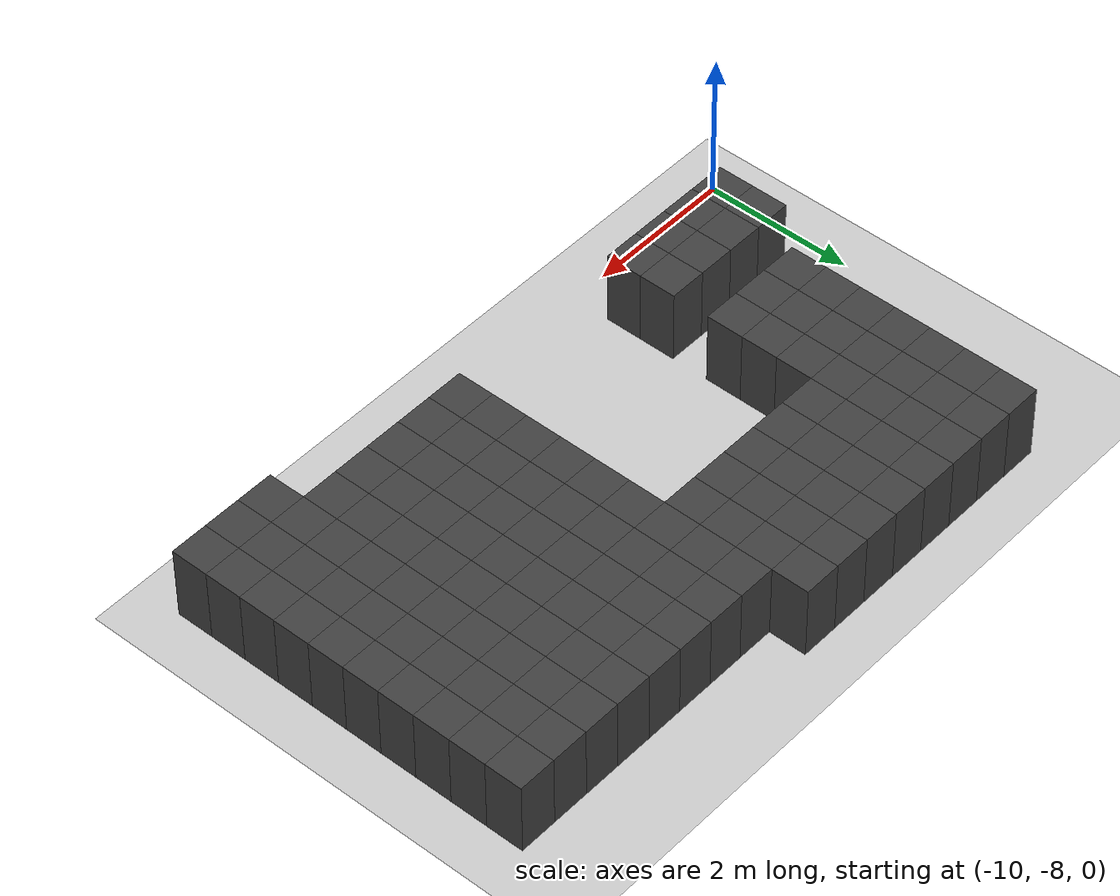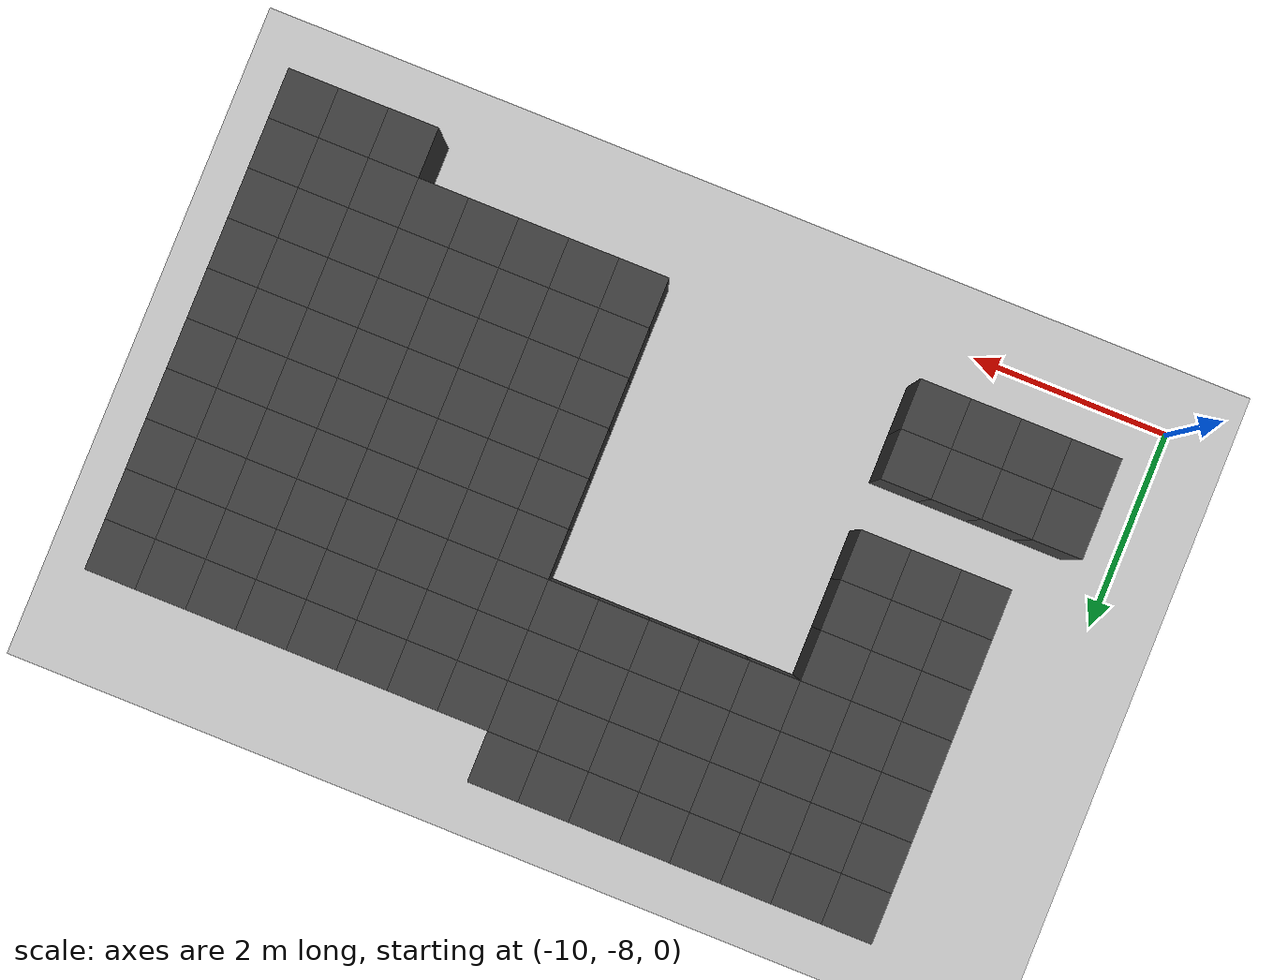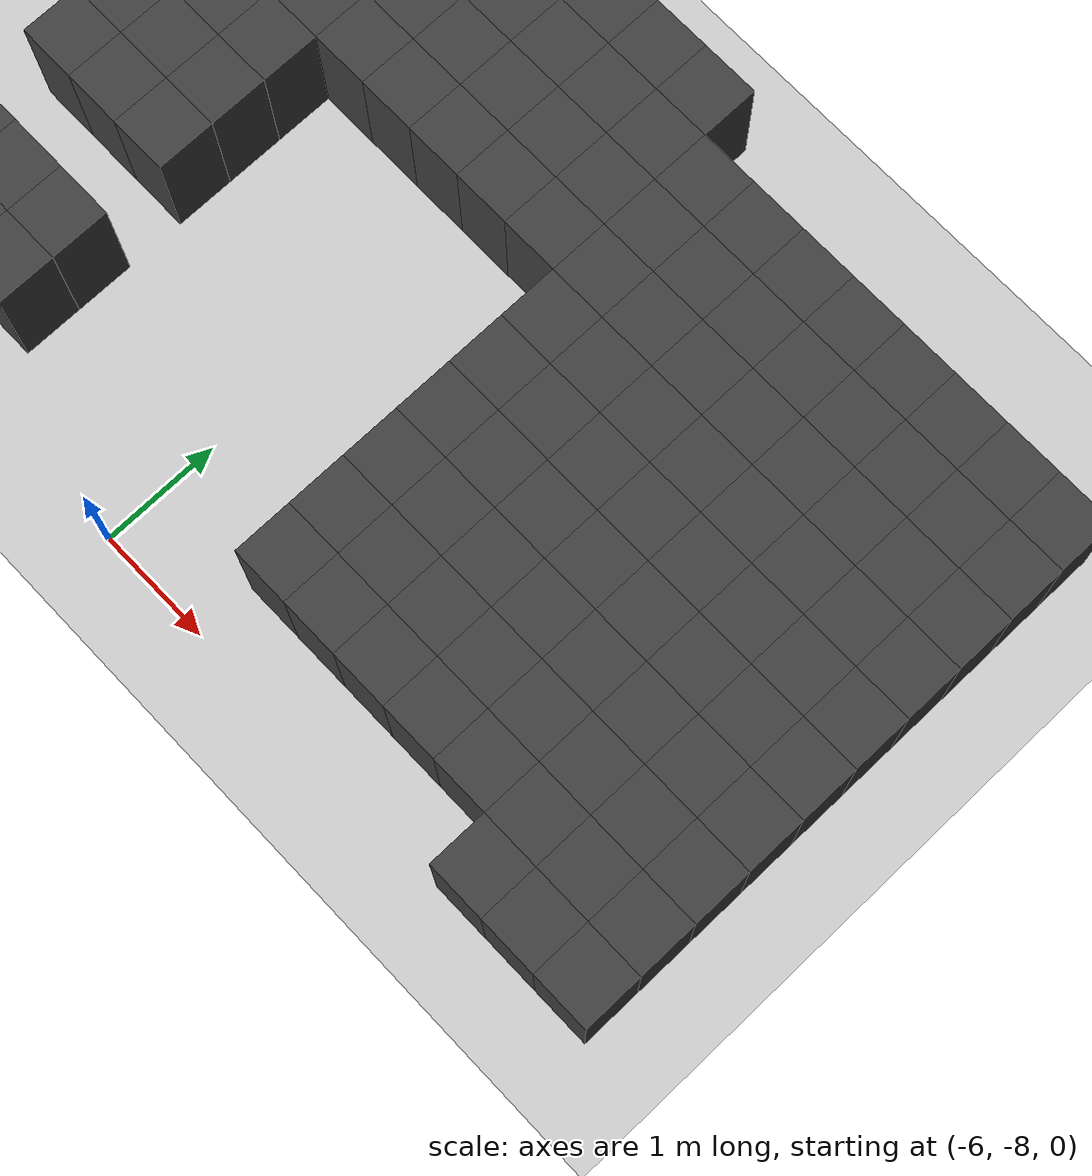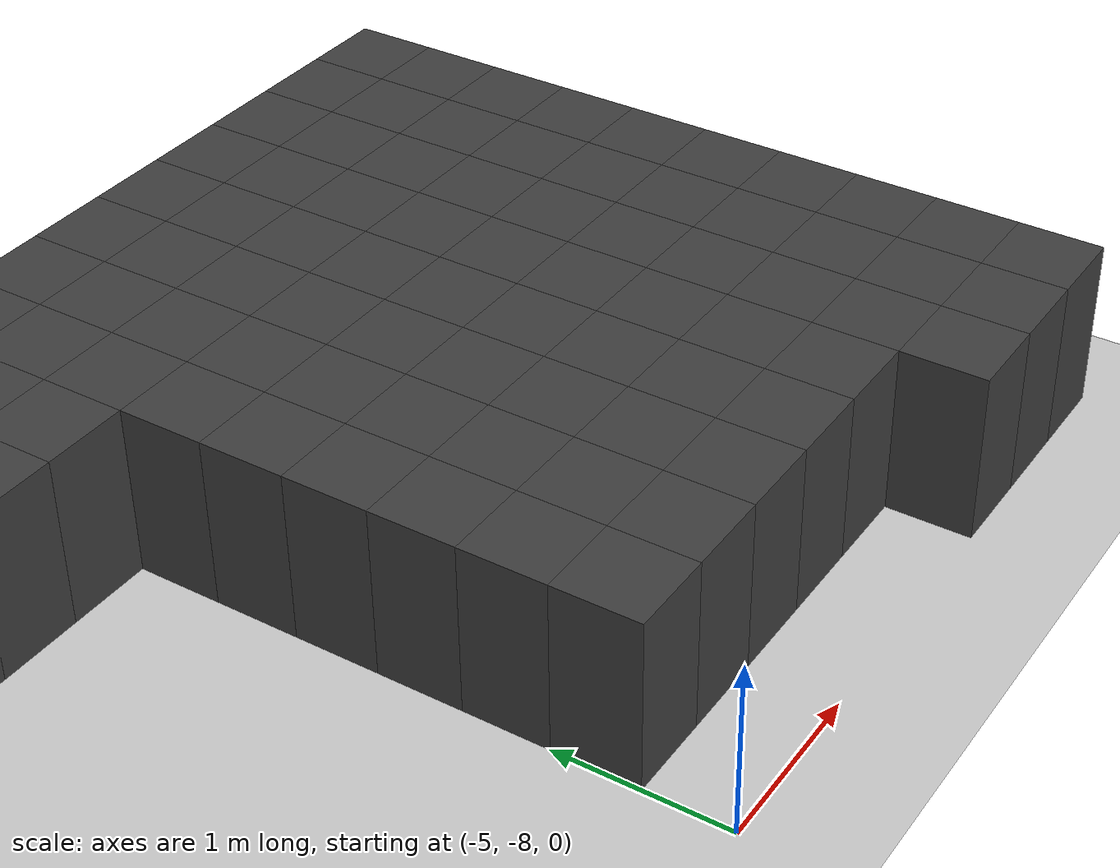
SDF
<sdf version="1.7">
 <world name="map_13994">
  <model name="ground_plane">
   <static>true</static>
   <link name="link">
    <collision name="collision">
     <geometry><plane><normal>0 0 1</normal><size>200 200</size></plane></geometry>
    </collision>
    <visual name="visual">
     <geometry><plane><normal>0 0 1</normal><size>200 200</size></plane></geometry>
     <material><ambient>0.8 0.8 0.8 1</ambient><diffuse>0.8 0.8 0.8 1</diffuse></material>
    </visual>
   </link>
  </model>
  <model name="maze_environment">
   <static>true</static>
   <link name="wall_981">
    <pose>-8.750 -2.750 0.500 0 0 0</pose>
    <collision name="col"><geometry><box><size>0.5 0.5 1.0</size></box></geometry></collision>
    <visual name="vis">
     <geometry><box><size>0.5 0.5 1.0</size></box></geometry>
     <material><ambient>0.15 0.15 0.15 1</ambient><diffuse>0.25 0.25 0.25 1</diffuse></material>
    </visual>
   </link>
   <link name="wall_982">
    <pose>-8.250 -2.750 0.500 0 0 0</pose>
    <collision name="col"><geometry><box><size>0.5 0.5 1.0</size></box></geometry></collision>
    <visual name="vis">
     <geometry><box><size>0.5 0.5 1.0</size></box></geometry>
     <material><ambient>0.15 0.15 0.15 1</ambient><diffuse>0.25 0.25 0.25 1</diffuse></material>
    </visual>
   </link>
   <link name="wall_983">
    <pose>-7.750 -2.750 0.500 0 0 0</pose>
    <collision name="col"><geometry><box><size>0.5 0.5 1.0</size></box></geometry></collision>
    <visual name="vis">
     <geometry><box><size>0.5 0.5 1.0</size></box></geometry>
     <material><ambient>0.15 0.15 0.15 1</ambient><diffuse>0.25 0.25 0.25 1</diffuse></material>
    </visual>
   </link>
   <link name="wall_984">
    <pose>-7.250 -2.750 0.500 0 0 0</pose>
    <collision name="col"><geometry><box><size>0.5 0.5 1.0</size></box></geometry></collision>
    <visual name="vis">
     <geometry><box><size>0.5 0.5 1.0</size></box></geometry>
     <material><ambient>0.15 0.15 0.15 1</ambient><diffuse>0.25 0.25 0.25 1</diffuse></material>
    </visual>
   </link>
   <link name="wall_985">
    <pose>-6.750 -2.750 0.500 0 0 0</pose>
    <collision name="col"><geometry><box><size>0.5 0.5 1.0</size></box></geometry></collision>
    <visual name="vis">
     <geometry><box><size>0.5 0.5 1.0</size></box></geometry>
     <material><ambient>0.15 0.15 0.15 1</ambient><diffuse>0.25 0.25 0.25 1</diffuse></material>
    </visual>
   </link>
   <link name="wall_986">
    <pose>-6.250 -2.750 0.500 0 0 0</pose>
    <collision name="col"><geometry><box><size>0.5 0.5 1.0</size></box></geometry></collision>
    <visual name="vis">
     <geometry><box><size>0.5 0.5 1.0</size></box></geometry>
     <material><ambient>0.15 0.15 0.15 1</ambient><diffuse>0.25 0.25 0.25 1</diffuse></material>
    </visual>
   </link>
   <link name="wall_987">
    <pose>-5.750 -2.750 0.500 0 0 0</pose>
    <collision name="col"><geometry><box><size>0.5 0.5 1.0</size></box></geometry></collision>
    <visual name="vis">
     <geometry><box><size>0.5 0.5 1.0</size></box></geometry>
     <material><ambient>0.15 0.15 0.15 1</ambient><diffuse>0.25 0.25 0.25 1</diffuse></material>
    </visual>
   </link>
   <link name="wall_988">
    <pose>-5.250 -2.750 0.500 0 0 0</pose>
    <collision name="col"><geometry><box><size>0.5 0.5 1.0</size></box></geometry></collision>
    <visual name="vis">
     <geometry><box><size>0.5 0.5 1.0</size></box></geometry>
     <material><ambient>0.15 0.15 0.15 1</ambient><diffuse>0.25 0.25 0.25 1</diffuse></material>
    </visual>
   </link>
   <link name="wall_1022">
    <pose>-8.750 -3.250 0.500 0 0 0</pose>
    <collision name="col"><geometry><box><size>0.5 0.5 1.0</size></box></geometry></collision>
    <visual name="vis">
     <geometry><box><size>0.5 0.5 1.0</size></box></geometry>
     <material><ambient>0.15 0.15 0.15 1</ambient><diffuse>0.25 0.25 0.25 1</diffuse></material>
    </visual>
   </link>
   <link name="wall_1023">
    <pose>-8.250 -3.250 0.500 0 0 0</pose>
    <collision name="col"><geometry><box><size>0.5 0.5 1.0</size></box></geometry></collision>
    <visual name="vis">
     <geometry><box><size>0.5 0.5 1.0</size></box></geometry>
     <material><ambient>0.15 0.15 0.15 1</ambient><diffuse>0.25 0.25 0.25 1</diffuse></material>
    </visual>
   </link>
   <link name="wall_1024">
    <pose>-7.750 -3.250 0.500 0 0 0</pose>
    <collision name="col"><geometry><box><size>0.5 0.5 1.0</size></box></geometry></collision>
    <visual name="vis">
     <geometry><box><size>0.5 0.5 1.0</size></box></geometry>
     <material><ambient>0.15 0.15 0.15 1</ambient><diffuse>0.25 0.25 0.25 1</diffuse></material>
    </visual>
   </link>
   <link name="wall_1025">
    <pose>-7.250 -3.250 0.500 0 0 0</pose>
    <collision name="col"><geometry><box><size>0.5 0.5 1.0</size></box></geometry></collision>
    <visual name="vis">
     <geometry><box><size>0.5 0.5 1.0</size></box></geometry>
     <material><ambient>0.15 0.15 0.15 1</ambient><diffuse>0.25 0.25 0.25 1</diffuse></material>
    </visual>
   </link>
   <link name="wall_1026">
    <pose>-6.750 -3.250 0.500 0 0 0</pose>
    <collision name="col"><geometry><box><size>0.5 0.5 1.0</size></box></geometry></collision>
    <visual name="vis">
     <geometry><box><size>0.5 0.5 1.0</size></box></geometry>
     <material><ambient>0.15 0.15 0.15 1</ambient><diffuse>0.25 0.25 0.25 1</diffuse></material>
    </visual>
   </link>
   <link name="wall_1027">
    <pose>-6.250 -3.250 0.500 0 0 0</pose>
    <collision name="col"><geometry><box><size>0.5 0.5 1.0</size></box></geometry></collision>
    <visual name="vis">
     <geometry><box><size>0.5 0.5 1.0</size></box></geometry>
     <material><ambient>0.15 0.15 0.15 1</ambient><diffuse>0.25 0.25 0.25 1</diffuse></material>
    </visual>
   </link>
   <link name="wall_1028">
    <pose>-5.750 -3.250 0.500 0 0 0</pose>
    <collision name="col"><geometry><box><size>0.5 0.5 1.0</size></box></geometry></collision>
    <visual name="vis">
     <geometry><box><size>0.5 0.5 1.0</size></box></geometry>
     <material><ambient>0.15 0.15 0.15 1</ambient><diffuse>0.25 0.25 0.25 1</diffuse></material>
    </visual>
   </link>
   <link name="wall_1029">
    <pose>-5.250 -3.250 0.500 0 0 0</pose>
    <collision name="col"><geometry><box><size>0.5 0.5 1.0</size></box></geometry></collision>
    <visual name="vis">
     <geometry><box><size>0.5 0.5 1.0</size></box></geometry>
     <material><ambient>0.15 0.15 0.15 1</ambient><diffuse>0.25 0.25 0.25 1</diffuse></material>
    </visual>
   </link>
   <link name="wall_1030">
    <pose>-4.750 -3.250 0.500 0 0 0</pose>
    <collision name="col"><geometry><box><size>0.5 0.5 1.0</size></box></geometry></collision>
    <visual name="vis">
     <geometry><box><size>0.5 0.5 1.0</size></box></geometry>
     <material><ambient>0.15 0.15 0.15 1</ambient><diffuse>0.25 0.25 0.25 1</diffuse></material>
    </visual>
   </link>
   <link name="wall_1031">
    <pose>-4.250 -3.250 0.500 0 0 0</pose>
    <collision name="col"><geometry><box><size>0.5 0.5 1.0</size></box></geometry></collision>
    <visual name="vis">
     <geometry><box><size>0.5 0.5 1.0</size></box></geometry>
     <material><ambient>0.15 0.15 0.15 1</ambient><diffuse>0.25 0.25 0.25 1</diffuse></material>
    </visual>
   </link>
   <link name="wall_1032">
    <pose>-3.750 -3.250 0.500 0 0 0</pose>
    <collision name="col"><geometry><box><size>0.5 0.5 1.0</size></box></geometry></collision>
    <visual name="vis">
     <geometry><box><size>0.5 0.5 1.0</size></box></geometry>
     <material><ambient>0.15 0.15 0.15 1</ambient><diffuse>0.25 0.25 0.25 1</diffuse></material>
    </visual>
   </link>
   <link name="wall_1033">
    <pose>-3.250 -3.250 0.500 0 0 0</pose>
    <collision name="col"><geometry><box><size>0.5 0.5 1.0</size></box></geometry></collision>
    <visual name="vis">
     <geometry><box><size>0.5 0.5 1.0</size></box></geometry>
     <material><ambient>0.15 0.15 0.15 1</ambient><diffuse>0.25 0.25 0.25 1</diffuse></material>
    </visual>
   </link>
   <link name="wall_1034">
    <pose>-2.750 -3.250 0.500 0 0 0</pose>
    <collision name="col"><geometry><box><size>0.5 0.5 1.0</size></box></geometry></collision>
    <visual name="vis">
     <geometry><box><size>0.5 0.5 1.0</size></box></geometry>
     <material><ambient>0.15 0.15 0.15 1</ambient><diffuse>0.25 0.25 0.25 1</diffuse></material>
    </visual>
   </link>
   <link name="wall_1035">
    <pose>-2.250 -3.250 0.500 0 0 0</pose>
    <collision name="col"><geometry><box><size>0.5 0.5 1.0</size></box></geometry></collision>
    <visual name="vis">
     <geometry><box><size>0.5 0.5 1.0</size></box></geometry>
     <material><ambient>0.15 0.15 0.15 1</ambient><diffuse>0.25 0.25 0.25 1</diffuse></material>
    </visual>
   </link>
   <link name="wall_1036">
    <pose>-1.750 -3.250 0.500 0 0 0</pose>
    <collision name="col"><geometry><box><size>0.5 0.5 1.0</size></box></geometry></collision>
    <visual name="vis">
     <geometry><box><size>0.5 0.5 1.0</size></box></geometry>
     <material><ambient>0.15 0.15 0.15 1</ambient><diffuse>0.25 0.25 0.25 1</diffuse></material>
    </visual>
   </link>
   <link name="wall_1037">
    <pose>-1.250 -3.250 0.500 0 0 0</pose>
    <collision name="col"><geometry><box><size>0.5 0.5 1.0</size></box></geometry></collision>
    <visual name="vis">
     <geometry><box><size>0.5 0.5 1.0</size></box></geometry>
     <material><ambient>0.15 0.15 0.15 1</ambient><diffuse>0.25 0.25 0.25 1</diffuse></material>
    </visual>
   </link>
   <link name="wall_1063">
    <pose>-8.750 -3.750 0.500 0 0 0</pose>
    <collision name="col"><geometry><box><size>0.5 0.5 1.0</size></box></geometry></collision>
    <visual name="vis">
     <geometry><box><size>0.5 0.5 1.0</size></box></geometry>
     <material><ambient>0.15 0.15 0.15 1</ambient><diffuse>0.25 0.25 0.25 1</diffuse></material>
    </visual>
   </link>
   <link name="wall_1064">
    <pose>-8.250 -3.750 0.500 0 0 0</pose>
    <collision name="col"><geometry><box><size>0.5 0.5 1.0</size></box></geometry></collision>
    <visual name="vis">
     <geometry><box><size>0.5 0.5 1.0</size></box></geometry>
     <material><ambient>0.15 0.15 0.15 1</ambient><diffuse>0.25 0.25 0.25 1</diffuse></material>
    </visual>
   </link>
   <link name="wall_1065">
    <pose>-7.750 -3.750 0.500 0 0 0</pose>
    <collision name="col"><geometry><box><size>0.5 0.5 1.0</size></box></geometry></collision>
    <visual name="vis">
     <geometry><box><size>0.5 0.5 1.0</size></box></geometry>
     <material><ambient>0.15 0.15 0.15 1</ambient><diffuse>0.25 0.25 0.25 1</diffuse></material>
    </visual>
   </link>
   <link name="wall_1066">
    <pose>-7.250 -3.750 0.500 0 0 0</pose>
    <collision name="col"><geometry><box><size>0.5 0.5 1.0</size></box></geometry></collision>
    <visual name="vis">
     <geometry><box><size>0.5 0.5 1.0</size></box></geometry>
     <material><ambient>0.15 0.15 0.15 1</ambient><diffuse>0.25 0.25 0.25 1</diffuse></material>
    </visual>
   </link>
   <link name="wall_1067">
    <pose>-6.750 -3.750 0.500 0 0 0</pose>
    <collision name="col"><geometry><box><size>0.5 0.5 1.0</size></box></geometry></collision>
    <visual name="vis">
     <geometry><box><size>0.5 0.5 1.0</size></box></geometry>
     <material><ambient>0.15 0.15 0.15 1</ambient><diffuse>0.25 0.25 0.25 1</diffuse></material>
    </visual>
   </link>
   <link name="wall_1068">
    <pose>-6.250 -3.750 0.500 0 0 0</pose>
    <collision name="col"><geometry><box><size>0.5 0.5 1.0</size></box></geometry></collision>
    <visual name="vis">
     <geometry><box><size>0.5 0.5 1.0</size></box></geometry>
     <material><ambient>0.15 0.15 0.15 1</ambient><diffuse>0.25 0.25 0.25 1</diffuse></material>
    </visual>
   </link>
   <link name="wall_1069">
    <pose>-5.750 -3.750 0.500 0 0 0</pose>
    <collision name="col"><geometry><box><size>0.5 0.5 1.0</size></box></geometry></collision>
    <visual name="vis">
     <geometry><box><size>0.5 0.5 1.0</size></box></geometry>
     <material><ambient>0.15 0.15 0.15 1</ambient><diffuse>0.25 0.25 0.25 1</diffuse></material>
    </visual>
   </link>
   <link name="wall_1070">
    <pose>-5.250 -3.750 0.500 0 0 0</pose>
    <collision name="col"><geometry><box><size>0.5 0.5 1.0</size></box></geometry></collision>
    <visual name="vis">
     <geometry><box><size>0.5 0.5 1.0</size></box></geometry>
     <material><ambient>0.15 0.15 0.15 1</ambient><diffuse>0.25 0.25 0.25 1</diffuse></material>
    </visual>
   </link>
   <link name="wall_1071">
    <pose>-4.750 -3.750 0.500 0 0 0</pose>
    <collision name="col"><geometry><box><size>0.5 0.5 1.0</size></box></geometry></collision>
    <visual name="vis">
     <geometry><box><size>0.5 0.5 1.0</size></box></geometry>
     <material><ambient>0.15 0.15 0.15 1</ambient><diffuse>0.25 0.25 0.25 1</diffuse></material>
    </visual>
   </link>
   <link name="wall_1072">
    <pose>-4.250 -3.750 0.500 0 0 0</pose>
    <collision name="col"><geometry><box><size>0.5 0.5 1.0</size></box></geometry></collision>
    <visual name="vis">
     <geometry><box><size>0.5 0.5 1.0</size></box></geometry>
     <material><ambient>0.15 0.15 0.15 1</ambient><diffuse>0.25 0.25 0.25 1</diffuse></material>
    </visual>
   </link>
   <link name="wall_1073">
    <pose>-3.750 -3.750 0.500 0 0 0</pose>
    <collision name="col"><geometry><box><size>0.5 0.5 1.0</size></box></geometry></collision>
    <visual name="vis">
     <geometry><box><size>0.5 0.5 1.0</size></box></geometry>
     <material><ambient>0.15 0.15 0.15 1</ambient><diffuse>0.25 0.25 0.25 1</diffuse></material>
    </visual>
   </link>
   <link name="wall_1074">
    <pose>-3.250 -3.750 0.500 0 0 0</pose>
    <collision name="col"><geometry><box><size>0.5 0.5 1.0</size></box></geometry></collision>
    <visual name="vis">
     <geometry><box><size>0.5 0.5 1.0</size></box></geometry>
     <material><ambient>0.15 0.15 0.15 1</ambient><diffuse>0.25 0.25 0.25 1</diffuse></material>
    </visual>
   </link>
   <link name="wall_1075">
    <pose>-2.750 -3.750 0.500 0 0 0</pose>
    <collision name="col"><geometry><box><size>0.5 0.5 1.0</size></box></geometry></collision>
    <visual name="vis">
     <geometry><box><size>0.5 0.5 1.0</size></box></geometry>
     <material><ambient>0.15 0.15 0.15 1</ambient><diffuse>0.25 0.25 0.25 1</diffuse></material>
    </visual>
   </link>
   <link name="wall_1076">
    <pose>-2.250 -3.750 0.500 0 0 0</pose>
    <collision name="col"><geometry><box><size>0.5 0.5 1.0</size></box></geometry></collision>
    <visual name="vis">
     <geometry><box><size>0.5 0.5 1.0</size></box></geometry>
     <material><ambient>0.15 0.15 0.15 1</ambient><diffuse>0.25 0.25 0.25 1</diffuse></material>
    </visual>
   </link>
   <link name="wall_1077">
    <pose>-1.750 -3.750 0.500 0 0 0</pose>
    <collision name="col"><geometry><box><size>0.5 0.5 1.0</size></box></geometry></collision>
    <visual name="vis">
     <geometry><box><size>0.5 0.5 1.0</size></box></geometry>
     <material><ambient>0.15 0.15 0.15 1</ambient><diffuse>0.25 0.25 0.25 1</diffuse></material>
    </visual>
   </link>
   <link name="wall_1078">
    <pose>-1.250 -3.750 0.500 0 0 0</pose>
    <collision name="col"><geometry><box><size>0.5 0.5 1.0</size></box></geometry></collision>
    <visual name="vis">
     <geometry><box><size>0.5 0.5 1.0</size></box></geometry>
     <material><ambient>0.15 0.15 0.15 1</ambient><diffuse>0.25 0.25 0.25 1</diffuse></material>
    </visual>
   </link>
   <link name="wall_1098">
    <pose>-8.750 -4.250 0.500 0 0 0</pose>
    <collision name="col"><geometry><box><size>0.5 0.5 1.0</size></box></geometry></collision>
    <visual name="vis">
     <geometry><box><size>0.5 0.5 1.0</size></box></geometry>
     <material><ambient>0.15 0.15 0.15 1</ambient><diffuse>0.25 0.25 0.25 1</diffuse></material>
    </visual>
   </link>
   <link name="wall_1099">
    <pose>-8.250 -4.250 0.500 0 0 0</pose>
    <collision name="col"><geometry><box><size>0.5 0.5 1.0</size></box></geometry></collision>
    <visual name="vis">
     <geometry><box><size>0.5 0.5 1.0</size></box></geometry>
     <material><ambient>0.15 0.15 0.15 1</ambient><diffuse>0.25 0.25 0.25 1</diffuse></material>
    </visual>
   </link>
   <link name="wall_1100">
    <pose>-7.750 -4.250 0.500 0 0 0</pose>
    <collision name="col"><geometry><box><size>0.5 0.5 1.0</size></box></geometry></collision>
    <visual name="vis">
     <geometry><box><size>0.5 0.5 1.0</size></box></geometry>
     <material><ambient>0.15 0.15 0.15 1</ambient><diffuse>0.25 0.25 0.25 1</diffuse></material>
    </visual>
   </link>
   <link name="wall_1101">
    <pose>-7.250 -4.250 0.500 0 0 0</pose>
    <collision name="col"><geometry><box><size>0.5 0.5 1.0</size></box></geometry></collision>
    <visual name="vis">
     <geometry><box><size>0.5 0.5 1.0</size></box></geometry>
     <material><ambient>0.15 0.15 0.15 1</ambient><diffuse>0.25 0.25 0.25 1</diffuse></material>
    </visual>
   </link>
   <link name="wall_1102">
    <pose>-6.750 -4.250 0.500 0 0 0</pose>
    <collision name="col"><geometry><box><size>0.5 0.5 1.0</size></box></geometry></collision>
    <visual name="vis">
     <geometry><box><size>0.5 0.5 1.0</size></box></geometry>
     <material><ambient>0.15 0.15 0.15 1</ambient><diffuse>0.25 0.25 0.25 1</diffuse></material>
    </visual>
   </link>
   <link name="wall_1103">
    <pose>-6.250 -4.250 0.500 0 0 0</pose>
    <collision name="col"><geometry><box><size>0.5 0.5 1.0</size></box></geometry></collision>
    <visual name="vis">
     <geometry><box><size>0.5 0.5 1.0</size></box></geometry>
     <material><ambient>0.15 0.15 0.15 1</ambient><diffuse>0.25 0.25 0.25 1</diffuse></material>
    </visual>
   </link>
   <link name="wall_1104">
    <pose>-5.750 -4.250 0.500 0 0 0</pose>
    <collision name="col"><geometry><box><size>0.5 0.5 1.0</size></box></geometry></collision>
    <visual name="vis">
     <geometry><box><size>0.5 0.5 1.0</size></box></geometry>
     <material><ambient>0.15 0.15 0.15 1</ambient><diffuse>0.25 0.25 0.25 1</diffuse></material>
    </visual>
   </link>
   <link name="wall_1105">
    <pose>-5.250 -4.250 0.500 0 0 0</pose>
    <collision name="col"><geometry><box><size>0.5 0.5 1.0</size></box></geometry></collision>
    <visual name="vis">
     <geometry><box><size>0.5 0.5 1.0</size></box></geometry>
     <material><ambient>0.15 0.15 0.15 1</ambient><diffuse>0.25 0.25 0.25 1</diffuse></material>
    </visual>
   </link>
   <link name="wall_1106">
    <pose>-4.750 -4.250 0.500 0 0 0</pose>
    <collision name="col"><geometry><box><size>0.5 0.5 1.0</size></box></geometry></collision>
    <visual name="vis">
     <geometry><box><size>0.5 0.5 1.0</size></box></geometry>
     <material><ambient>0.15 0.15 0.15 1</ambient><diffuse>0.25 0.25 0.25 1</diffuse></material>
    </visual>
   </link>
   <link name="wall_1107">
    <pose>-4.250 -4.250 0.500 0 0 0</pose>
    <collision name="col"><geometry><box><size>0.5 0.5 1.0</size></box></geometry></collision>
    <visual name="vis">
     <geometry><box><size>0.5 0.5 1.0</size></box></geometry>
     <material><ambient>0.15 0.15 0.15 1</ambient><diffuse>0.25 0.25 0.25 1</diffuse></material>
    </visual>
   </link>
   <link name="wall_1108">
    <pose>-3.750 -4.250 0.500 0 0 0</pose>
    <collision name="col"><geometry><box><size>0.5 0.5 1.0</size></box></geometry></collision>
    <visual name="vis">
     <geometry><box><size>0.5 0.5 1.0</size></box></geometry>
     <material><ambient>0.15 0.15 0.15 1</ambient><diffuse>0.25 0.25 0.25 1</diffuse></material>
    </visual>
   </link>
   <link name="wall_1109">
    <pose>-3.250 -4.250 0.500 0 0 0</pose>
    <collision name="col"><geometry><box><size>0.5 0.5 1.0</size></box></geometry></collision>
    <visual name="vis">
     <geometry><box><size>0.5 0.5 1.0</size></box></geometry>
     <material><ambient>0.15 0.15 0.15 1</ambient><diffuse>0.25 0.25 0.25 1</diffuse></material>
    </visual>
   </link>
   <link name="wall_1110">
    <pose>-2.750 -4.250 0.500 0 0 0</pose>
    <collision name="col"><geometry><box><size>0.5 0.5 1.0</size></box></geometry></collision>
    <visual name="vis">
     <geometry><box><size>0.5 0.5 1.0</size></box></geometry>
     <material><ambient>0.15 0.15 0.15 1</ambient><diffuse>0.25 0.25 0.25 1</diffuse></material>
    </visual>
   </link>
   <link name="wall_1111">
    <pose>-2.250 -4.250 0.500 0 0 0</pose>
    <collision name="col"><geometry><box><size>0.5 0.5 1.0</size></box></geometry></collision>
    <visual name="vis">
     <geometry><box><size>0.5 0.5 1.0</size></box></geometry>
     <material><ambient>0.15 0.15 0.15 1</ambient><diffuse>0.25 0.25 0.25 1</diffuse></material>
    </visual>
   </link>
   <link name="wall_1112">
    <pose>-1.750 -4.250 0.500 0 0 0</pose>
    <collision name="col"><geometry><box><size>0.5 0.5 1.0</size></box></geometry></collision>
    <visual name="vis">
     <geometry><box><size>0.5 0.5 1.0</size></box></geometry>
     <material><ambient>0.15 0.15 0.15 1</ambient><diffuse>0.25 0.25 0.25 1</diffuse></material>
    </visual>
   </link>
   <link name="wall_1113">
    <pose>-1.250 -4.250 0.500 0 0 0</pose>
    <collision name="col"><geometry><box><size>0.5 0.5 1.0</size></box></geometry></collision>
    <visual name="vis">
     <geometry><box><size>0.5 0.5 1.0</size></box></geometry>
     <material><ambient>0.15 0.15 0.15 1</ambient><diffuse>0.25 0.25 0.25 1</diffuse></material>
    </visual>
   </link>
   <link name="wall_1133">
    <pose>-8.750 -4.750 0.500 0 0 0</pose>
    <collision name="col"><geometry><box><size>0.5 0.5 1.0</size></box></geometry></collision>
    <visual name="vis">
     <geometry><box><size>0.5 0.5 1.0</size></box></geometry>
     <material><ambient>0.15 0.15 0.15 1</ambient><diffuse>0.25 0.25 0.25 1</diffuse></material>
    </visual>
   </link>
   <link name="wall_1134">
    <pose>-8.250 -4.750 0.500 0 0 0</pose>
    <collision name="col"><geometry><box><size>0.5 0.5 1.0</size></box></geometry></collision>
    <visual name="vis">
     <geometry><box><size>0.5 0.5 1.0</size></box></geometry>
     <material><ambient>0.15 0.15 0.15 1</ambient><diffuse>0.25 0.25 0.25 1</diffuse></material>
    </visual>
   </link>
   <link name="wall_1135">
    <pose>-7.750 -4.750 0.500 0 0 0</pose>
    <collision name="col"><geometry><box><size>0.5 0.5 1.0</size></box></geometry></collision>
    <visual name="vis">
     <geometry><box><size>0.5 0.5 1.0</size></box></geometry>
     <material><ambient>0.15 0.15 0.15 1</ambient><diffuse>0.25 0.25 0.25 1</diffuse></material>
    </visual>
   </link>
   <link name="wall_1136">
    <pose>-4.750 -4.750 0.500 0 0 0</pose>
    <collision name="col"><geometry><box><size>0.5 0.5 1.0</size></box></geometry></collision>
    <visual name="vis">
     <geometry><box><size>0.5 0.5 1.0</size></box></geometry>
     <material><ambient>0.15 0.15 0.15 1</ambient><diffuse>0.25 0.25 0.25 1</diffuse></material>
    </visual>
   </link>
   <link name="wall_1137">
    <pose>-4.250 -4.750 0.500 0 0 0</pose>
    <collision name="col"><geometry><box><size>0.5 0.5 1.0</size></box></geometry></collision>
    <visual name="vis">
     <geometry><box><size>0.5 0.5 1.0</size></box></geometry>
     <material><ambient>0.15 0.15 0.15 1</ambient><diffuse>0.25 0.25 0.25 1</diffuse></material>
    </visual>
   </link>
   <link name="wall_1138">
    <pose>-3.750 -4.750 0.500 0 0 0</pose>
    <collision name="col"><geometry><box><size>0.5 0.5 1.0</size></box></geometry></collision>
    <visual name="vis">
     <geometry><box><size>0.5 0.5 1.0</size></box></geometry>
     <material><ambient>0.15 0.15 0.15 1</ambient><diffuse>0.25 0.25 0.25 1</diffuse></material>
    </visual>
   </link>
   <link name="wall_1139">
    <pose>-3.250 -4.750 0.500 0 0 0</pose>
    <collision name="col"><geometry><box><size>0.5 0.5 1.0</size></box></geometry></collision>
    <visual name="vis">
     <geometry><box><size>0.5 0.5 1.0</size></box></geometry>
     <material><ambient>0.15 0.15 0.15 1</ambient><diffuse>0.25 0.25 0.25 1</diffuse></material>
    </visual>
   </link>
   <link name="wall_1140">
    <pose>-2.750 -4.750 0.500 0 0 0</pose>
    <collision name="col"><geometry><box><size>0.5 0.5 1.0</size></box></geometry></collision>
    <visual name="vis">
     <geometry><box><size>0.5 0.5 1.0</size></box></geometry>
     <material><ambient>0.15 0.15 0.15 1</ambient><diffuse>0.25 0.25 0.25 1</diffuse></material>
    </visual>
   </link>
   <link name="wall_1141">
    <pose>-2.250 -4.750 0.500 0 0 0</pose>
    <collision name="col"><geometry><box><size>0.5 0.5 1.0</size></box></geometry></collision>
    <visual name="vis">
     <geometry><box><size>0.5 0.5 1.0</size></box></geometry>
     <material><ambient>0.15 0.15 0.15 1</ambient><diffuse>0.25 0.25 0.25 1</diffuse></material>
    </visual>
   </link>
   <link name="wall_1142">
    <pose>-1.750 -4.750 0.500 0 0 0</pose>
    <collision name="col"><geometry><box><size>0.5 0.5 1.0</size></box></geometry></collision>
    <visual name="vis">
     <geometry><box><size>0.5 0.5 1.0</size></box></geometry>
     <material><ambient>0.15 0.15 0.15 1</ambient><diffuse>0.25 0.25 0.25 1</diffuse></material>
    </visual>
   </link>
   <link name="wall_1143">
    <pose>-1.250 -4.750 0.500 0 0 0</pose>
    <collision name="col"><geometry><box><size>0.5 0.5 1.0</size></box></geometry></collision>
    <visual name="vis">
     <geometry><box><size>0.5 0.5 1.0</size></box></geometry>
     <material><ambient>0.15 0.15 0.15 1</ambient><diffuse>0.25 0.25 0.25 1</diffuse></material>
    </visual>
   </link>
   <link name="wall_1163">
    <pose>-8.750 -5.250 0.500 0 0 0</pose>
    <collision name="col"><geometry><box><size>0.5 0.5 1.0</size></box></geometry></collision>
    <visual name="vis">
     <geometry><box><size>0.5 0.5 1.0</size></box></geometry>
     <material><ambient>0.15 0.15 0.15 1</ambient><diffuse>0.25 0.25 0.25 1</diffuse></material>
    </visual>
   </link>
   <link name="wall_1164">
    <pose>-8.250 -5.250 0.500 0 0 0</pose>
    <collision name="col"><geometry><box><size>0.5 0.5 1.0</size></box></geometry></collision>
    <visual name="vis">
     <geometry><box><size>0.5 0.5 1.0</size></box></geometry>
     <material><ambient>0.15 0.15 0.15 1</ambient><diffuse>0.25 0.25 0.25 1</diffuse></material>
    </visual>
   </link>
   <link name="wall_1165">
    <pose>-7.750 -5.250 0.500 0 0 0</pose>
    <collision name="col"><geometry><box><size>0.5 0.5 1.0</size></box></geometry></collision>
    <visual name="vis">
     <geometry><box><size>0.5 0.5 1.0</size></box></geometry>
     <material><ambient>0.15 0.15 0.15 1</ambient><diffuse>0.25 0.25 0.25 1</diffuse></material>
    </visual>
   </link>
   <link name="wall_1166">
    <pose>-4.750 -5.250 0.500 0 0 0</pose>
    <collision name="col"><geometry><box><size>0.5 0.5 1.0</size></box></geometry></collision>
    <visual name="vis">
     <geometry><box><size>0.5 0.5 1.0</size></box></geometry>
     <material><ambient>0.15 0.15 0.15 1</ambient><diffuse>0.25 0.25 0.25 1</diffuse></material>
    </visual>
   </link>
   <link name="wall_1167">
    <pose>-4.250 -5.250 0.500 0 0 0</pose>
    <collision name="col"><geometry><box><size>0.5 0.5 1.0</size></box></geometry></collision>
    <visual name="vis">
     <geometry><box><size>0.5 0.5 1.0</size></box></geometry>
     <material><ambient>0.15 0.15 0.15 1</ambient><diffuse>0.25 0.25 0.25 1</diffuse></material>
    </visual>
   </link>
   <link name="wall_1168">
    <pose>-3.750 -5.250 0.500 0 0 0</pose>
    <collision name="col"><geometry><box><size>0.5 0.5 1.0</size></box></geometry></collision>
    <visual name="vis">
     <geometry><box><size>0.5 0.5 1.0</size></box></geometry>
     <material><ambient>0.15 0.15 0.15 1</ambient><diffuse>0.25 0.25 0.25 1</diffuse></material>
    </visual>
   </link>
   <link name="wall_1169">
    <pose>-3.250 -5.250 0.500 0 0 0</pose>
    <collision name="col"><geometry><box><size>0.5 0.5 1.0</size></box></geometry></collision>
    <visual name="vis">
     <geometry><box><size>0.5 0.5 1.0</size></box></geometry>
     <material><ambient>0.15 0.15 0.15 1</ambient><diffuse>0.25 0.25 0.25 1</diffuse></material>
    </visual>
   </link>
   <link name="wall_1170">
    <pose>-2.750 -5.250 0.500 0 0 0</pose>
    <collision name="col"><geometry><box><size>0.5 0.5 1.0</size></box></geometry></collision>
    <visual name="vis">
     <geometry><box><size>0.5 0.5 1.0</size></box></geometry>
     <material><ambient>0.15 0.15 0.15 1</ambient><diffuse>0.25 0.25 0.25 1</diffuse></material>
    </visual>
   </link>
   <link name="wall_1171">
    <pose>-2.250 -5.250 0.500 0 0 0</pose>
    <collision name="col"><geometry><box><size>0.5 0.5 1.0</size></box></geometry></collision>
    <visual name="vis">
     <geometry><box><size>0.5 0.5 1.0</size></box></geometry>
     <material><ambient>0.15 0.15 0.15 1</ambient><diffuse>0.25 0.25 0.25 1</diffuse></material>
    </visual>
   </link>
   <link name="wall_1172">
    <pose>-1.750 -5.250 0.500 0 0 0</pose>
    <collision name="col"><geometry><box><size>0.5 0.5 1.0</size></box></geometry></collision>
    <visual name="vis">
     <geometry><box><size>0.5 0.5 1.0</size></box></geometry>
     <material><ambient>0.15 0.15 0.15 1</ambient><diffuse>0.25 0.25 0.25 1</diffuse></material>
    </visual>
   </link>
   <link name="wall_1173">
    <pose>-1.250 -5.250 0.500 0 0 0</pose>
    <collision name="col"><geometry><box><size>0.5 0.5 1.0</size></box></geometry></collision>
    <visual name="vis">
     <geometry><box><size>0.5 0.5 1.0</size></box></geometry>
     <material><ambient>0.15 0.15 0.15 1</ambient><diffuse>0.25 0.25 0.25 1</diffuse></material>
    </visual>
   </link>
   <link name="wall_1198">
    <pose>-8.750 -5.750 0.500 0 0 0</pose>
    <collision name="col"><geometry><box><size>0.5 0.5 1.0</size></box></geometry></collision>
    <visual name="vis">
     <geometry><box><size>0.5 0.5 1.0</size></box></geometry>
     <material><ambient>0.15 0.15 0.15 1</ambient><diffuse>0.25 0.25 0.25 1</diffuse></material>
    </visual>
   </link>
   <link name="wall_1199">
    <pose>-8.250 -5.750 0.500 0 0 0</pose>
    <collision name="col"><geometry><box><size>0.5 0.5 1.0</size></box></geometry></collision>
    <visual name="vis">
     <geometry><box><size>0.5 0.5 1.0</size></box></geometry>
     <material><ambient>0.15 0.15 0.15 1</ambient><diffuse>0.25 0.25 0.25 1</diffuse></material>
    </visual>
   </link>
   <link name="wall_1200">
    <pose>-7.750 -5.750 0.500 0 0 0</pose>
    <collision name="col"><geometry><box><size>0.5 0.5 1.0</size></box></geometry></collision>
    <visual name="vis">
     <geometry><box><size>0.5 0.5 1.0</size></box></geometry>
     <material><ambient>0.15 0.15 0.15 1</ambient><diffuse>0.25 0.25 0.25 1</diffuse></material>
    </visual>
   </link>
   <link name="wall_1201">
    <pose>-4.750 -5.750 0.500 0 0 0</pose>
    <collision name="col"><geometry><box><size>0.5 0.5 1.0</size></box></geometry></collision>
    <visual name="vis">
     <geometry><box><size>0.5 0.5 1.0</size></box></geometry>
     <material><ambient>0.15 0.15 0.15 1</ambient><diffuse>0.25 0.25 0.25 1</diffuse></material>
    </visual>
   </link>
   <link name="wall_1202">
    <pose>-4.250 -5.750 0.500 0 0 0</pose>
    <collision name="col"><geometry><box><size>0.5 0.5 1.0</size></box></geometry></collision>
    <visual name="vis">
     <geometry><box><size>0.5 0.5 1.0</size></box></geometry>
     <material><ambient>0.15 0.15 0.15 1</ambient><diffuse>0.25 0.25 0.25 1</diffuse></material>
    </visual>
   </link>
   <link name="wall_1203">
    <pose>-3.750 -5.750 0.500 0 0 0</pose>
    <collision name="col"><geometry><box><size>0.5 0.5 1.0</size></box></geometry></collision>
    <visual name="vis">
     <geometry><box><size>0.5 0.5 1.0</size></box></geometry>
     <material><ambient>0.15 0.15 0.15 1</ambient><diffuse>0.25 0.25 0.25 1</diffuse></material>
    </visual>
   </link>
   <link name="wall_1204">
    <pose>-3.250 -5.750 0.500 0 0 0</pose>
    <collision name="col"><geometry><box><size>0.5 0.5 1.0</size></box></geometry></collision>
    <visual name="vis">
     <geometry><box><size>0.5 0.5 1.0</size></box></geometry>
     <material><ambient>0.15 0.15 0.15 1</ambient><diffuse>0.25 0.25 0.25 1</diffuse></material>
    </visual>
   </link>
   <link name="wall_1205">
    <pose>-2.750 -5.750 0.500 0 0 0</pose>
    <collision name="col"><geometry><box><size>0.5 0.5 1.0</size></box></geometry></collision>
    <visual name="vis">
     <geometry><box><size>0.5 0.5 1.0</size></box></geometry>
     <material><ambient>0.15 0.15 0.15 1</ambient><diffuse>0.25 0.25 0.25 1</diffuse></material>
    </visual>
   </link>
   <link name="wall_1206">
    <pose>-2.250 -5.750 0.500 0 0 0</pose>
    <collision name="col"><geometry><box><size>0.5 0.5 1.0</size></box></geometry></collision>
    <visual name="vis">
     <geometry><box><size>0.5 0.5 1.0</size></box></geometry>
     <material><ambient>0.15 0.15 0.15 1</ambient><diffuse>0.25 0.25 0.25 1</diffuse></material>
    </visual>
   </link>
   <link name="wall_1207">
    <pose>-1.750 -5.750 0.500 0 0 0</pose>
    <collision name="col"><geometry><box><size>0.5 0.5 1.0</size></box></geometry></collision>
    <visual name="vis">
     <geometry><box><size>0.5 0.5 1.0</size></box></geometry>
     <material><ambient>0.15 0.15 0.15 1</ambient><diffuse>0.25 0.25 0.25 1</diffuse></material>
    </visual>
   </link>
   <link name="wall_1208">
    <pose>-1.250 -5.750 0.500 0 0 0</pose>
    <collision name="col"><geometry><box><size>0.5 0.5 1.0</size></box></geometry></collision>
    <visual name="vis">
     <geometry><box><size>0.5 0.5 1.0</size></box></geometry>
     <material><ambient>0.15 0.15 0.15 1</ambient><diffuse>0.25 0.25 0.25 1</diffuse></material>
    </visual>
   </link>
   <link name="wall_1231">
    <pose>-4.750 -6.250 0.500 0 0 0</pose>
    <collision name="col"><geometry><box><size>0.5 0.5 1.0</size></box></geometry></collision>
    <visual name="vis">
     <geometry><box><size>0.5 0.5 1.0</size></box></geometry>
     <material><ambient>0.15 0.15 0.15 1</ambient><diffuse>0.25 0.25 0.25 1</diffuse></material>
    </visual>
   </link>
   <link name="wall_1232">
    <pose>-4.250 -6.250 0.500 0 0 0</pose>
    <collision name="col"><geometry><box><size>0.5 0.5 1.0</size></box></geometry></collision>
    <visual name="vis">
     <geometry><box><size>0.5 0.5 1.0</size></box></geometry>
     <material><ambient>0.15 0.15 0.15 1</ambient><diffuse>0.25 0.25 0.25 1</diffuse></material>
    </visual>
   </link>
   <link name="wall_1233">
    <pose>-3.750 -6.250 0.500 0 0 0</pose>
    <collision name="col"><geometry><box><size>0.5 0.5 1.0</size></box></geometry></collision>
    <visual name="vis">
     <geometry><box><size>0.5 0.5 1.0</size></box></geometry>
     <material><ambient>0.15 0.15 0.15 1</ambient><diffuse>0.25 0.25 0.25 1</diffuse></material>
    </visual>
   </link>
   <link name="wall_1234">
    <pose>-3.250 -6.250 0.500 0 0 0</pose>
    <collision name="col"><geometry><box><size>0.5 0.5 1.0</size></box></geometry></collision>
    <visual name="vis">
     <geometry><box><size>0.5 0.5 1.0</size></box></geometry>
     <material><ambient>0.15 0.15 0.15 1</ambient><diffuse>0.25 0.25 0.25 1</diffuse></material>
    </visual>
   </link>
   <link name="wall_1235">
    <pose>-2.750 -6.250 0.500 0 0 0</pose>
    <collision name="col"><geometry><box><size>0.5 0.5 1.0</size></box></geometry></collision>
    <visual name="vis">
     <geometry><box><size>0.5 0.5 1.0</size></box></geometry>
     <material><ambient>0.15 0.15 0.15 1</ambient><diffuse>0.25 0.25 0.25 1</diffuse></material>
    </visual>
   </link>
   <link name="wall_1236">
    <pose>-2.250 -6.250 0.500 0 0 0</pose>
    <collision name="col"><geometry><box><size>0.5 0.5 1.0</size></box></geometry></collision>
    <visual name="vis">
     <geometry><box><size>0.5 0.5 1.0</size></box></geometry>
     <material><ambient>0.15 0.15 0.15 1</ambient><diffuse>0.25 0.25 0.25 1</diffuse></material>
    </visual>
   </link>
   <link name="wall_1237">
    <pose>-1.750 -6.250 0.500 0 0 0</pose>
    <collision name="col"><geometry><box><size>0.5 0.5 1.0</size></box></geometry></collision>
    <visual name="vis">
     <geometry><box><size>0.5 0.5 1.0</size></box></geometry>
     <material><ambient>0.15 0.15 0.15 1</ambient><diffuse>0.25 0.25 0.25 1</diffuse></material>
    </visual>
   </link>
   <link name="wall_1238">
    <pose>-1.250 -6.250 0.500 0 0 0</pose>
    <collision name="col"><geometry><box><size>0.5 0.5 1.0</size></box></geometry></collision>
    <visual name="vis">
     <geometry><box><size>0.5 0.5 1.0</size></box></geometry>
     <material><ambient>0.15 0.15 0.15 1</ambient><diffuse>0.25 0.25 0.25 1</diffuse></material>
    </visual>
   </link>
   <link name="wall_1264">
    <pose>-9.250 -6.750 0.500 0 0 0</pose>
    <collision name="col"><geometry><box><size>0.5 0.5 1.0</size></box></geometry></collision>
    <visual name="vis">
     <geometry><box><size>0.5 0.5 1.0</size></box></geometry>
     <material><ambient>0.15 0.15 0.15 1</ambient><diffuse>0.25 0.25 0.25 1</diffuse></material>
    </visual>
   </link>
   <link name="wall_1265">
    <pose>-8.750 -6.750 0.500 0 0 0</pose>
    <collision name="col"><geometry><box><size>0.5 0.5 1.0</size></box></geometry></collision>
    <visual name="vis">
     <geometry><box><size>0.5 0.5 1.0</size></box></geometry>
     <material><ambient>0.15 0.15 0.15 1</ambient><diffuse>0.25 0.25 0.25 1</diffuse></material>
    </visual>
   </link>
   <link name="wall_1266">
    <pose>-8.250 -6.750 0.500 0 0 0</pose>
    <collision name="col"><geometry><box><size>0.5 0.5 1.0</size></box></geometry></collision>
    <visual name="vis">
     <geometry><box><size>0.5 0.5 1.0</size></box></geometry>
     <material><ambient>0.15 0.15 0.15 1</ambient><diffuse>0.25 0.25 0.25 1</diffuse></material>
    </visual>
   </link>
   <link name="wall_1267">
    <pose>-7.750 -6.750 0.500 0 0 0</pose>
    <collision name="col"><geometry><box><size>0.5 0.5 1.0</size></box></geometry></collision>
    <visual name="vis">
     <geometry><box><size>0.5 0.5 1.0</size></box></geometry>
     <material><ambient>0.15 0.15 0.15 1</ambient><diffuse>0.25 0.25 0.25 1</diffuse></material>
    </visual>
   </link>
   <link name="wall_1268">
    <pose>-4.750 -6.750 0.500 0 0 0</pose>
    <collision name="col"><geometry><box><size>0.5 0.5 1.0</size></box></geometry></collision>
    <visual name="vis">
     <geometry><box><size>0.5 0.5 1.0</size></box></geometry>
     <material><ambient>0.15 0.15 0.15 1</ambient><diffuse>0.25 0.25 0.25 1</diffuse></material>
    </visual>
   </link>
   <link name="wall_1269">
    <pose>-4.250 -6.750 0.500 0 0 0</pose>
    <collision name="col"><geometry><box><size>0.5 0.5 1.0</size></box></geometry></collision>
    <visual name="vis">
     <geometry><box><size>0.5 0.5 1.0</size></box></geometry>
     <material><ambient>0.15 0.15 0.15 1</ambient><diffuse>0.25 0.25 0.25 1</diffuse></material>
    </visual>
   </link>
   <link name="wall_1270">
    <pose>-3.750 -6.750 0.500 0 0 0</pose>
    <collision name="col"><geometry><box><size>0.5 0.5 1.0</size></box></geometry></collision>
    <visual name="vis">
     <geometry><box><size>0.5 0.5 1.0</size></box></geometry>
     <material><ambient>0.15 0.15 0.15 1</ambient><diffuse>0.25 0.25 0.25 1</diffuse></material>
    </visual>
   </link>
   <link name="wall_1271">
    <pose>-3.250 -6.750 0.500 0 0 0</pose>
    <collision name="col"><geometry><box><size>0.5 0.5 1.0</size></box></geometry></collision>
    <visual name="vis">
     <geometry><box><size>0.5 0.5 1.0</size></box></geometry>
     <material><ambient>0.15 0.15 0.15 1</ambient><diffuse>0.25 0.25 0.25 1</diffuse></material>
    </visual>
   </link>
   <link name="wall_1272">
    <pose>-2.750 -6.750 0.500 0 0 0</pose>
    <collision name="col"><geometry><box><size>0.5 0.5 1.0</size></box></geometry></collision>
    <visual name="vis">
     <geometry><box><size>0.5 0.5 1.0</size></box></geometry>
     <material><ambient>0.15 0.15 0.15 1</ambient><diffuse>0.25 0.25 0.25 1</diffuse></material>
    </visual>
   </link>
   <link name="wall_1273">
    <pose>-2.250 -6.750 0.500 0 0 0</pose>
    <collision name="col"><geometry><box><size>0.5 0.5 1.0</size></box></geometry></collision>
    <visual name="vis">
     <geometry><box><size>0.5 0.5 1.0</size></box></geometry>
     <material><ambient>0.15 0.15 0.15 1</ambient><diffuse>0.25 0.25 0.25 1</diffuse></material>
    </visual>
   </link>
   <link name="wall_1274">
    <pose>-1.750 -6.750 0.500 0 0 0</pose>
    <collision name="col"><geometry><box><size>0.5 0.5 1.0</size></box></geometry></collision>
    <visual name="vis">
     <geometry><box><size>0.5 0.5 1.0</size></box></geometry>
     <material><ambient>0.15 0.15 0.15 1</ambient><diffuse>0.25 0.25 0.25 1</diffuse></material>
    </visual>
   </link>
   <link name="wall_1275">
    <pose>-1.250 -6.750 0.500 0 0 0</pose>
    <collision name="col"><geometry><box><size>0.5 0.5 1.0</size></box></geometry></collision>
    <visual name="vis">
     <geometry><box><size>0.5 0.5 1.0</size></box></geometry>
     <material><ambient>0.15 0.15 0.15 1</ambient><diffuse>0.25 0.25 0.25 1</diffuse></material>
    </visual>
   </link>
   <link name="wall_1301">
    <pose>-9.250 -7.250 0.500 0 0 0</pose>
    <collision name="col"><geometry><box><size>0.5 0.5 1.0</size></box></geometry></collision>
    <visual name="vis">
     <geometry><box><size>0.5 0.5 1.0</size></box></geometry>
     <material><ambient>0.15 0.15 0.15 1</ambient><diffuse>0.25 0.25 0.25 1</diffuse></material>
    </visual>
   </link>
   <link name="wall_1302">
    <pose>-8.750 -7.250 0.500 0 0 0</pose>
    <collision name="col"><geometry><box><size>0.5 0.5 1.0</size></box></geometry></collision>
    <visual name="vis">
     <geometry><box><size>0.5 0.5 1.0</size></box></geometry>
     <material><ambient>0.15 0.15 0.15 1</ambient><diffuse>0.25 0.25 0.25 1</diffuse></material>
    </visual>
   </link>
   <link name="wall_1303">
    <pose>-8.250 -7.250 0.500 0 0 0</pose>
    <collision name="col"><geometry><box><size>0.5 0.5 1.0</size></box></geometry></collision>
    <visual name="vis">
     <geometry><box><size>0.5 0.5 1.0</size></box></geometry>
     <material><ambient>0.15 0.15 0.15 1</ambient><diffuse>0.25 0.25 0.25 1</diffuse></material>
    </visual>
   </link>
   <link name="wall_1304">
    <pose>-7.750 -7.250 0.500 0 0 0</pose>
    <collision name="col"><geometry><box><size>0.5 0.5 1.0</size></box></geometry></collision>
    <visual name="vis">
     <geometry><box><size>0.5 0.5 1.0</size></box></geometry>
     <material><ambient>0.15 0.15 0.15 1</ambient><diffuse>0.25 0.25 0.25 1</diffuse></material>
    </visual>
   </link>
   <link name="wall_1305">
    <pose>-4.750 -7.250 0.500 0 0 0</pose>
    <collision name="col"><geometry><box><size>0.5 0.5 1.0</size></box></geometry></collision>
    <visual name="vis">
     <geometry><box><size>0.5 0.5 1.0</size></box></geometry>
     <material><ambient>0.15 0.15 0.15 1</ambient><diffuse>0.25 0.25 0.25 1</diffuse></material>
    </visual>
   </link>
   <link name="wall_1306">
    <pose>-4.250 -7.250 0.500 0 0 0</pose>
    <collision name="col"><geometry><box><size>0.5 0.5 1.0</size></box></geometry></collision>
    <visual name="vis">
     <geometry><box><size>0.5 0.5 1.0</size></box></geometry>
     <material><ambient>0.15 0.15 0.15 1</ambient><diffuse>0.25 0.25 0.25 1</diffuse></material>
    </visual>
   </link>
   <link name="wall_1307">
    <pose>-3.750 -7.250 0.500 0 0 0</pose>
    <collision name="col"><geometry><box><size>0.5 0.5 1.0</size></box></geometry></collision>
    <visual name="vis">
     <geometry><box><size>0.5 0.5 1.0</size></box></geometry>
     <material><ambient>0.15 0.15 0.15 1</ambient><diffuse>0.25 0.25 0.25 1</diffuse></material>
    </visual>
   </link>
   <link name="wall_1308">
    <pose>-3.250 -7.250 0.500 0 0 0</pose>
    <collision name="col"><geometry><box><size>0.5 0.5 1.0</size></box></geometry></collision>
    <visual name="vis">
     <geometry><box><size>0.5 0.5 1.0</size></box></geometry>
     <material><ambient>0.15 0.15 0.15 1</ambient><diffuse>0.25 0.25 0.25 1</diffuse></material>
    </visual>
   </link>
   <link name="wall_1309">
    <pose>-2.750 -7.250 0.500 0 0 0</pose>
    <collision name="col"><geometry><box><size>0.5 0.5 1.0</size></box></geometry></collision>
    <visual name="vis">
     <geometry><box><size>0.5 0.5 1.0</size></box></geometry>
     <material><ambient>0.15 0.15 0.15 1</ambient><diffuse>0.25 0.25 0.25 1</diffuse></material>
    </visual>
   </link>
   <link name="wall_1310">
    <pose>-2.250 -7.250 0.500 0 0 0</pose>
    <collision name="col"><geometry><box><size>0.5 0.5 1.0</size></box></geometry></collision>
    <visual name="vis">
     <geometry><box><size>0.5 0.5 1.0</size></box></geometry>
     <material><ambient>0.15 0.15 0.15 1</ambient><diffuse>0.25 0.25 0.25 1</diffuse></material>
    </visual>
   </link>
   <link name="wall_1311">
    <pose>-1.750 -7.250 0.500 0 0 0</pose>
    <collision name="col"><geometry><box><size>0.5 0.5 1.0</size></box></geometry></collision>
    <visual name="vis">
     <geometry><box><size>0.5 0.5 1.0</size></box></geometry>
     <material><ambient>0.15 0.15 0.15 1</ambient><diffuse>0.25 0.25 0.25 1</diffuse></material>
    </visual>
   </link>
   <link name="wall_1312">
    <pose>-1.250 -7.250 0.500 0 0 0</pose>
    <collision name="col"><geometry><box><size>0.5 0.5 1.0</size></box></geometry></collision>
    <visual name="vis">
     <geometry><box><size>0.5 0.5 1.0</size></box></geometry>
     <material><ambient>0.15 0.15 0.15 1</ambient><diffuse>0.25 0.25 0.25 1</diffuse></material>
    </visual>
   </link>
   <link name="wall_1347">
    <pose>-2.250 -7.750 0.500 0 0 0</pose>
    <collision name="col"><geometry><box><size>0.5 0.5 1.0</size></box></geometry></collision>
    <visual name="vis">
     <geometry><box><size>0.5 0.5 1.0</size></box></geometry>
     <material><ambient>0.15 0.15 0.15 1</ambient><diffuse>0.25 0.25 0.25 1</diffuse></material>
    </visual>
   </link>
   <link name="wall_1348">
    <pose>-1.750 -7.750 0.500 0 0 0</pose>
    <collision name="col"><geometry><box><size>0.5 0.5 1.0</size></box></geometry></collision>
    <visual name="vis">
     <geometry><box><size>0.5 0.5 1.0</size></box></geometry>
     <material><ambient>0.15 0.15 0.15 1</ambient><diffuse>0.25 0.25 0.25 1</diffuse></material>
    </visual>
   </link>
   <link name="wall_1349">
    <pose>-1.250 -7.750 0.500 0 0 0</pose>
    <collision name="col"><geometry><box><size>0.5 0.5 1.0</size></box></geometry></collision>
    <visual name="vis">
     <geometry><box><size>0.5 0.5 1.0</size></box></geometry>
     <material><ambient>0.15 0.15 0.15 1</ambient><diffuse>0.25 0.25 0.25 1</diffuse></material>
    </visual>
   </link>
  </model>
 </world>
</sdf>
